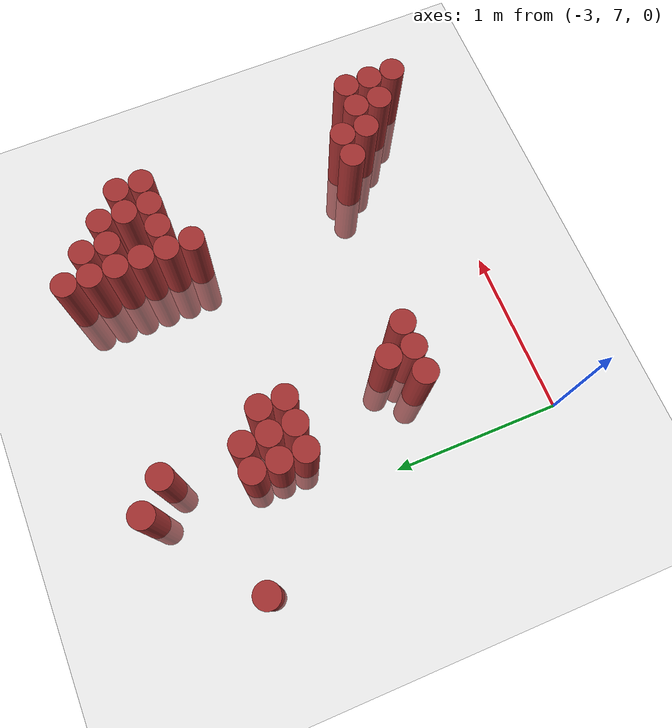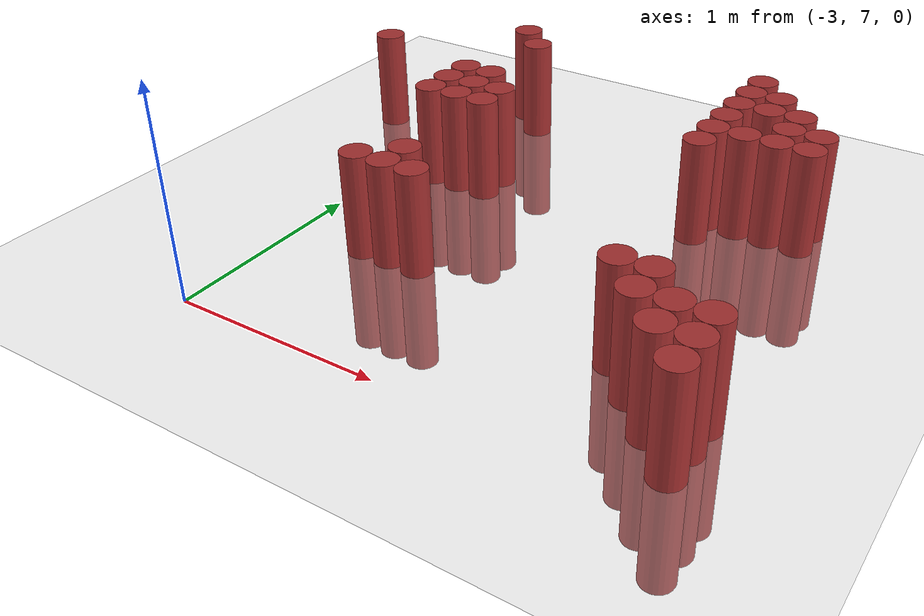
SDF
<sdf version="1.6">
 <world name="default">
  <model name="ground_plane">
   <static>1</static>
   <link name="link">
    <collision name="collision">
     <geometry><plane><normal>0 0 1</normal><size>100 100</size></plane></geometry>
     <surface><friction><ode><mu>100</mu><mu2>50</mu2></ode></friction></surface>
    </collision>
    <visual name="visual">
     <cast_shadows>0</cast_shadows>
     <geometry><plane><normal>0 0 1</normal><size>100 100</size></plane></geometry>
     <material>
      <script><uri>file://media/materials/scripts/gazebo.material</uri><name>Gazebo/Grey</name></script>
     </material>
    </visual>
   </link>
  </model>
  <model name="unit_cylinder_187">
   <static>1</static>
   <pose>-3.375000 8.925000 0.000000 0.000000 0.000000 0.000000</pose>
   <link name="link">
    <inertial>
     <mass>1</mass>
     <inertia><ixx>0.145833</ixx><ixy>0</ixy><ixz>0</ixz><iyy>0.145833</iyy><iyz>0</iyz><izz>0.125</izz></inertia>
    </inertial>
    <collision name="collision">
     <geometry><cylinder><radius>0.075000</radius><length>1</length></cylinder></geometry>
    </collision>
    <visual name="visual">
     <geometry><cylinder><radius>0.075000</radius><length>1</length></cylinder></geometry>
     <material>
      <ambient>0.648000 0.192000 0.192000 1</ambient>
      <diffuse>0.648000 0.192000 0.192000 1</diffuse>
     </material>
     <material>
      <script><name>Gazebo/Grey</name><uri>file://media/materials/scripts/gazebo.material</uri></script>
     </material>
    </visual>
    <sensor name="sensor_contact" type="contact"><contact><collision>collision</collision></contact></sensor>
   </link>
   <plugin filename="gz-sim-touchplugin-system" name="gz::sim::systems::TouchPlugin">
    <target>robot</target>
    <namespace>robot</namespace>
    <time>0.001</time>
    <enabled>true</enabled>
   </plugin>
  </model>
  <model name="unit_cylinder_197">
   <static>1</static>
   <pose>-2.775000 8.475000 0.000000 0.000000 0.000000 0.000000</pose>
   <link name="link">
    <inertial>
     <mass>1</mass>
     <inertia><ixx>0.145833</ixx><ixy>0</ixy><ixz>0</ixz><iyy>0.145833</iyy><iyz>0</iyz><izz>0.125</izz></inertia>
    </inertial>
    <collision name="collision">
     <geometry><cylinder><radius>0.075000</radius><length>1</length></cylinder></geometry>
    </collision>
    <visual name="visual">
     <geometry><cylinder><radius>0.075000</radius><length>1</length></cylinder></geometry>
     <material>
      <ambient>0.648000 0.192000 0.192000 1</ambient>
      <diffuse>0.648000 0.192000 0.192000 1</diffuse>
     </material>
     <material>
      <script><name>Gazebo/Grey</name><uri>file://media/materials/scripts/gazebo.material</uri></script>
     </material>
    </visual>
    <sensor name="sensor_contact" type="contact"><contact><collision>collision</collision></contact></sensor>
   </link>
   <plugin filename="gz-sim-touchplugin-system" name="gz::sim::systems::TouchPlugin">
    <target>robot</target>
    <namespace>robot</namespace>
    <time>0.001</time>
    <enabled>true</enabled>
   </plugin>
  </model>
  <model name="unit_cylinder_198">
   <static>1</static>
   <pose>-2.775000 8.625000 0.000000 0.000000 0.000000 0.000000</pose>
   <link name="link">
    <inertial>
     <mass>1</mass>
     <inertia><ixx>0.145833</ixx><ixy>0</ixy><ixz>0</ixz><iyy>0.145833</iyy><iyz>0</iyz><izz>0.125</izz></inertia>
    </inertial>
    <collision name="collision">
     <geometry><cylinder><radius>0.075000</radius><length>1</length></cylinder></geometry>
    </collision>
    <visual name="visual">
     <geometry><cylinder><radius>0.075000</radius><length>1</length></cylinder></geometry>
     <material>
      <ambient>0.648000 0.192000 0.192000 1</ambient>
      <diffuse>0.648000 0.192000 0.192000 1</diffuse>
     </material>
     <material>
      <script><name>Gazebo/Grey</name><uri>file://media/materials/scripts/gazebo.material</uri></script>
     </material>
    </visual>
    <sensor name="sensor_contact" type="contact"><contact><collision>collision</collision></contact></sensor>
   </link>
   <plugin filename="gz-sim-touchplugin-system" name="gz::sim::systems::TouchPlugin">
    <target>robot</target>
    <namespace>robot</namespace>
    <time>0.001</time>
    <enabled>true</enabled>
   </plugin>
  </model>
  <model name="unit_cylinder_199">
   <static>1</static>
   <pose>-2.775000 8.775000 0.000000 0.000000 0.000000 0.000000</pose>
   <link name="link">
    <inertial>
     <mass>1</mass>
     <inertia><ixx>0.145833</ixx><ixy>0</ixy><ixz>0</ixz><iyy>0.145833</iyy><iyz>0</iyz><izz>0.125</izz></inertia>
    </inertial>
    <collision name="collision">
     <geometry><cylinder><radius>0.075000</radius><length>1</length></cylinder></geometry>
    </collision>
    <visual name="visual">
     <geometry><cylinder><radius>0.075000</radius><length>1</length></cylinder></geometry>
     <material>
      <ambient>0.648000 0.192000 0.192000 1</ambient>
      <diffuse>0.648000 0.192000 0.192000 1</diffuse>
     </material>
     <material>
      <script><name>Gazebo/Grey</name><uri>file://media/materials/scripts/gazebo.material</uri></script>
     </material>
    </visual>
    <sensor name="sensor_contact" type="contact"><contact><collision>collision</collision></contact></sensor>
   </link>
   <plugin filename="gz-sim-touchplugin-system" name="gz::sim::systems::TouchPlugin">
    <target>robot</target>
    <namespace>robot</namespace>
    <time>0.001</time>
    <enabled>true</enabled>
   </plugin>
  </model>
  <model name="unit_cylinder_200">
   <static>1</static>
   <pose>-2.775000 9.375000 0.000000 0.000000 0.000000 0.000000</pose>
   <link name="link">
    <inertial>
     <mass>1</mass>
     <inertia><ixx>0.145833</ixx><ixy>0</ixy><ixz>0</ixz><iyy>0.145833</iyy><iyz>0</iyz><izz>0.125</izz></inertia>
    </inertial>
    <collision name="collision">
     <geometry><cylinder><radius>0.075000</radius><length>1</length></cylinder></geometry>
    </collision>
    <visual name="visual">
     <geometry><cylinder><radius>0.075000</radius><length>1</length></cylinder></geometry>
     <material>
      <ambient>0.648000 0.192000 0.192000 1</ambient>
      <diffuse>0.648000 0.192000 0.192000 1</diffuse>
     </material>
     <material>
      <script><name>Gazebo/Grey</name><uri>file://media/materials/scripts/gazebo.material</uri></script>
     </material>
    </visual>
    <sensor name="sensor_contact" type="contact"><contact><collision>collision</collision></contact></sensor>
   </link>
   <plugin filename="gz-sim-touchplugin-system" name="gz::sim::systems::TouchPlugin">
    <target>robot</target>
    <namespace>robot</namespace>
    <time>0.001</time>
    <enabled>true</enabled>
   </plugin>
  </model>
  <model name="unit_cylinder_201">
   <static>1</static>
   <pose>-2.625000 7.725000 0.000000 0.000000 0.000000 0.000000</pose>
   <link name="link">
    <inertial>
     <mass>1</mass>
     <inertia><ixx>0.145833</ixx><ixy>0</ixy><ixz>0</ixz><iyy>0.145833</iyy><iyz>0</iyz><izz>0.125</izz></inertia>
    </inertial>
    <collision name="collision">
     <geometry><cylinder><radius>0.075000</radius><length>1</length></cylinder></geometry>
    </collision>
    <visual name="visual">
     <geometry><cylinder><radius>0.075000</radius><length>1</length></cylinder></geometry>
     <material>
      <ambient>0.648000 0.192000 0.192000 1</ambient>
      <diffuse>0.648000 0.192000 0.192000 1</diffuse>
     </material>
     <material>
      <script><name>Gazebo/Grey</name><uri>file://media/materials/scripts/gazebo.material</uri></script>
     </material>
    </visual>
    <sensor name="sensor_contact" type="contact"><contact><collision>collision</collision></contact></sensor>
   </link>
   <plugin filename="gz-sim-touchplugin-system" name="gz::sim::systems::TouchPlugin">
    <target>robot</target>
    <namespace>robot</namespace>
    <time>0.001</time>
    <enabled>true</enabled>
   </plugin>
  </model>
  <model name="unit_cylinder_202">
   <static>1</static>
   <pose>-2.625000 8.475000 0.000000 0.000000 0.000000 0.000000</pose>
   <link name="link">
    <inertial>
     <mass>1</mass>
     <inertia><ixx>0.145833</ixx><ixy>0</ixy><ixz>0</ixz><iyy>0.145833</iyy><iyz>0</iyz><izz>0.125</izz></inertia>
    </inertial>
    <collision name="collision">
     <geometry><cylinder><radius>0.075000</radius><length>1</length></cylinder></geometry>
    </collision>
    <visual name="visual">
     <geometry><cylinder><radius>0.075000</radius><length>1</length></cylinder></geometry>
     <material>
      <ambient>0.648000 0.192000 0.192000 1</ambient>
      <diffuse>0.648000 0.192000 0.192000 1</diffuse>
     </material>
     <material>
      <script><name>Gazebo/Grey</name><uri>file://media/materials/scripts/gazebo.material</uri></script>
     </material>
    </visual>
    <sensor name="sensor_contact" type="contact"><contact><collision>collision</collision></contact></sensor>
   </link>
   <plugin filename="gz-sim-touchplugin-system" name="gz::sim::systems::TouchPlugin">
    <target>robot</target>
    <namespace>robot</namespace>
    <time>0.001</time>
    <enabled>true</enabled>
   </plugin>
  </model>
  <model name="unit_cylinder_203">
   <static>1</static>
   <pose>-2.625000 8.625000 0.000000 0.000000 0.000000 0.000000</pose>
   <link name="link">
    <inertial>
     <mass>1</mass>
     <inertia><ixx>0.145833</ixx><ixy>0</ixy><ixz>0</ixz><iyy>0.145833</iyy><iyz>0</iyz><izz>0.125</izz></inertia>
    </inertial>
    <collision name="collision">
     <geometry><cylinder><radius>0.075000</radius><length>1</length></cylinder></geometry>
    </collision>
    <visual name="visual">
     <geometry><cylinder><radius>0.075000</radius><length>1</length></cylinder></geometry>
     <material>
      <ambient>0.648000 0.192000 0.192000 1</ambient>
      <diffuse>0.648000 0.192000 0.192000 1</diffuse>
     </material>
     <material>
      <script><name>Gazebo/Grey</name><uri>file://media/materials/scripts/gazebo.material</uri></script>
     </material>
    </visual>
    <sensor name="sensor_contact" type="contact"><contact><collision>collision</collision></contact></sensor>
   </link>
   <plugin filename="gz-sim-touchplugin-system" name="gz::sim::systems::TouchPlugin">
    <target>robot</target>
    <namespace>robot</namespace>
    <time>0.001</time>
    <enabled>true</enabled>
   </plugin>
  </model>
  <model name="unit_cylinder_204">
   <static>1</static>
   <pose>-2.625000 8.775000 0.000000 0.000000 0.000000 0.000000</pose>
   <link name="link">
    <inertial>
     <mass>1</mass>
     <inertia><ixx>0.145833</ixx><ixy>0</ixy><ixz>0</ixz><iyy>0.145833</iyy><iyz>0</iyz><izz>0.125</izz></inertia>
    </inertial>
    <collision name="collision">
     <geometry><cylinder><radius>0.075000</radius><length>1</length></cylinder></geometry>
    </collision>
    <visual name="visual">
     <geometry><cylinder><radius>0.075000</radius><length>1</length></cylinder></geometry>
     <material>
      <ambient>0.648000 0.192000 0.192000 1</ambient>
      <diffuse>0.648000 0.192000 0.192000 1</diffuse>
     </material>
     <material>
      <script><name>Gazebo/Grey</name><uri>file://media/materials/scripts/gazebo.material</uri></script>
     </material>
    </visual>
    <sensor name="sensor_contact" type="contact"><contact><collision>collision</collision></contact></sensor>
   </link>
   <plugin filename="gz-sim-touchplugin-system" name="gz::sim::systems::TouchPlugin">
    <target>robot</target>
    <namespace>robot</namespace>
    <time>0.001</time>
    <enabled>true</enabled>
   </plugin>
  </model>
  <model name="unit_cylinder_205">
   <static>1</static>
   <pose>-2.625000 9.225000 0.000000 0.000000 0.000000 0.000000</pose>
   <link name="link">
    <inertial>
     <mass>1</mass>
     <inertia><ixx>0.145833</ixx><ixy>0</ixy><ixz>0</ixz><iyy>0.145833</iyy><iyz>0</iyz><izz>0.125</izz></inertia>
    </inertial>
    <collision name="collision">
     <geometry><cylinder><radius>0.075000</radius><length>1</length></cylinder></geometry>
    </collision>
    <visual name="visual">
     <geometry><cylinder><radius>0.075000</radius><length>1</length></cylinder></geometry>
     <material>
      <ambient>0.648000 0.192000 0.192000 1</ambient>
      <diffuse>0.648000 0.192000 0.192000 1</diffuse>
     </material>
     <material>
      <script><name>Gazebo/Grey</name><uri>file://media/materials/scripts/gazebo.material</uri></script>
     </material>
    </visual>
    <sensor name="sensor_contact" type="contact"><contact><collision>collision</collision></contact></sensor>
   </link>
   <plugin filename="gz-sim-touchplugin-system" name="gz::sim::systems::TouchPlugin">
    <target>robot</target>
    <namespace>robot</namespace>
    <time>0.001</time>
    <enabled>true</enabled>
   </plugin>
  </model>
  <model name="unit_cylinder_206">
   <static>1</static>
   <pose>-2.475000 7.725000 0.000000 0.000000 0.000000 0.000000</pose>
   <link name="link">
    <inertial>
     <mass>1</mass>
     <inertia><ixx>0.145833</ixx><ixy>0</ixy><ixz>0</ixz><iyy>0.145833</iyy><iyz>0</iyz><izz>0.125</izz></inertia>
    </inertial>
    <collision name="collision">
     <geometry><cylinder><radius>0.075000</radius><length>1</length></cylinder></geometry>
    </collision>
    <visual name="visual">
     <geometry><cylinder><radius>0.075000</radius><length>1</length></cylinder></geometry>
     <material>
      <ambient>0.648000 0.192000 0.192000 1</ambient>
      <diffuse>0.648000 0.192000 0.192000 1</diffuse>
     </material>
     <material>
      <script><name>Gazebo/Grey</name><uri>file://media/materials/scripts/gazebo.material</uri></script>
     </material>
    </visual>
    <sensor name="sensor_contact" type="contact"><contact><collision>collision</collision></contact></sensor>
   </link>
   <plugin filename="gz-sim-touchplugin-system" name="gz::sim::systems::TouchPlugin">
    <target>robot</target>
    <namespace>robot</namespace>
    <time>0.001</time>
    <enabled>true</enabled>
   </plugin>
  </model>
  <model name="unit_cylinder_207">
   <static>1</static>
   <pose>-2.475000 7.875000 0.000000 0.000000 0.000000 0.000000</pose>
   <link name="link">
    <inertial>
     <mass>1</mass>
     <inertia><ixx>0.145833</ixx><ixy>0</ixy><ixz>0</ixz><iyy>0.145833</iyy><iyz>0</iyz><izz>0.125</izz></inertia>
    </inertial>
    <collision name="collision">
     <geometry><cylinder><radius>0.075000</radius><length>1</length></cylinder></geometry>
    </collision>
    <visual name="visual">
     <geometry><cylinder><radius>0.075000</radius><length>1</length></cylinder></geometry>
     <material>
      <ambient>0.648000 0.192000 0.192000 1</ambient>
      <diffuse>0.648000 0.192000 0.192000 1</diffuse>
     </material>
     <material>
      <script><name>Gazebo/Grey</name><uri>file://media/materials/scripts/gazebo.material</uri></script>
     </material>
    </visual>
    <sensor name="sensor_contact" type="contact"><contact><collision>collision</collision></contact></sensor>
   </link>
   <plugin filename="gz-sim-touchplugin-system" name="gz::sim::systems::TouchPlugin">
    <target>robot</target>
    <namespace>robot</namespace>
    <time>0.001</time>
    <enabled>true</enabled>
   </plugin>
  </model>
  <model name="unit_cylinder_208">
   <static>1</static>
   <pose>-2.475000 8.475000 0.000000 0.000000 0.000000 0.000000</pose>
   <link name="link">
    <inertial>
     <mass>1</mass>
     <inertia><ixx>0.145833</ixx><ixy>0</ixy><ixz>0</ixz><iyy>0.145833</iyy><iyz>0</iyz><izz>0.125</izz></inertia>
    </inertial>
    <collision name="collision">
     <geometry><cylinder><radius>0.075000</radius><length>1</length></cylinder></geometry>
    </collision>
    <visual name="visual">
     <geometry><cylinder><radius>0.075000</radius><length>1</length></cylinder></geometry>
     <material>
      <ambient>0.648000 0.192000 0.192000 1</ambient>
      <diffuse>0.648000 0.192000 0.192000 1</diffuse>
     </material>
     <material>
      <script><name>Gazebo/Grey</name><uri>file://media/materials/scripts/gazebo.material</uri></script>
     </material>
    </visual>
    <sensor name="sensor_contact" type="contact"><contact><collision>collision</collision></contact></sensor>
   </link>
   <plugin filename="gz-sim-touchplugin-system" name="gz::sim::systems::TouchPlugin">
    <target>robot</target>
    <namespace>robot</namespace>
    <time>0.001</time>
    <enabled>true</enabled>
   </plugin>
  </model>
  <model name="unit_cylinder_209">
   <static>1</static>
   <pose>-2.475000 8.625000 0.000000 0.000000 0.000000 0.000000</pose>
   <link name="link">
    <inertial>
     <mass>1</mass>
     <inertia><ixx>0.145833</ixx><ixy>0</ixy><ixz>0</ixz><iyy>0.145833</iyy><iyz>0</iyz><izz>0.125</izz></inertia>
    </inertial>
    <collision name="collision">
     <geometry><cylinder><radius>0.075000</radius><length>1</length></cylinder></geometry>
    </collision>
    <visual name="visual">
     <geometry><cylinder><radius>0.075000</radius><length>1</length></cylinder></geometry>
     <material>
      <ambient>0.648000 0.192000 0.192000 1</ambient>
      <diffuse>0.648000 0.192000 0.192000 1</diffuse>
     </material>
     <material>
      <script><name>Gazebo/Grey</name><uri>file://media/materials/scripts/gazebo.material</uri></script>
     </material>
    </visual>
    <sensor name="sensor_contact" type="contact"><contact><collision>collision</collision></contact></sensor>
   </link>
   <plugin filename="gz-sim-touchplugin-system" name="gz::sim::systems::TouchPlugin">
    <target>robot</target>
    <namespace>robot</namespace>
    <time>0.001</time>
    <enabled>true</enabled>
   </plugin>
  </model>
  <model name="unit_cylinder_210">
   <static>1</static>
   <pose>-2.325000 7.725000 0.000000 0.000000 0.000000 0.000000</pose>
   <link name="link">
    <inertial>
     <mass>1</mass>
     <inertia><ixx>0.145833</ixx><ixy>0</ixy><ixz>0</ixz><iyy>0.145833</iyy><iyz>0</iyz><izz>0.125</izz></inertia>
    </inertial>
    <collision name="collision">
     <geometry><cylinder><radius>0.075000</radius><length>1</length></cylinder></geometry>
    </collision>
    <visual name="visual">
     <geometry><cylinder><radius>0.075000</radius><length>1</length></cylinder></geometry>
     <material>
      <ambient>0.648000 0.192000 0.192000 1</ambient>
      <diffuse>0.648000 0.192000 0.192000 1</diffuse>
     </material>
     <material>
      <script><name>Gazebo/Grey</name><uri>file://media/materials/scripts/gazebo.material</uri></script>
     </material>
    </visual>
    <sensor name="sensor_contact" type="contact"><contact><collision>collision</collision></contact></sensor>
   </link>
   <plugin filename="gz-sim-touchplugin-system" name="gz::sim::systems::TouchPlugin">
    <target>robot</target>
    <namespace>robot</namespace>
    <time>0.001</time>
    <enabled>true</enabled>
   </plugin>
  </model>
  <model name="unit_cylinder_224">
   <static>1</static>
   <pose>-1.425000 8.625000 0.000000 0.000000 0.000000 0.000000</pose>
   <link name="link">
    <inertial>
     <mass>1</mass>
     <inertia><ixx>0.145833</ixx><ixy>0</ixy><ixz>0</ixz><iyy>0.145833</iyy><iyz>0</iyz><izz>0.125</izz></inertia>
    </inertial>
    <collision name="collision">
     <geometry><cylinder><radius>0.075000</radius><length>1</length></cylinder></geometry>
    </collision>
    <visual name="visual">
     <geometry><cylinder><radius>0.075000</radius><length>1</length></cylinder></geometry>
     <material>
      <ambient>0.648000 0.192000 0.192000 1</ambient>
      <diffuse>0.648000 0.192000 0.192000 1</diffuse>
     </material>
     <material>
      <script><name>Gazebo/Grey</name><uri>file://media/materials/scripts/gazebo.material</uri></script>
     </material>
    </visual>
    <sensor name="sensor_contact" type="contact"><contact><collision>collision</collision></contact></sensor>
   </link>
   <plugin filename="gz-sim-touchplugin-system" name="gz::sim::systems::TouchPlugin">
    <target>robot</target>
    <namespace>robot</namespace>
    <time>0.001</time>
    <enabled>true</enabled>
   </plugin>
  </model>
  <model name="unit_cylinder_225">
   <static>1</static>
   <pose>-1.425000 8.775000 0.000000 0.000000 0.000000 0.000000</pose>
   <link name="link">
    <inertial>
     <mass>1</mass>
     <inertia><ixx>0.145833</ixx><ixy>0</ixy><ixz>0</ixz><iyy>0.145833</iyy><iyz>0</iyz><izz>0.125</izz></inertia>
    </inertial>
    <collision name="collision">
     <geometry><cylinder><radius>0.075000</radius><length>1</length></cylinder></geometry>
    </collision>
    <visual name="visual">
     <geometry><cylinder><radius>0.075000</radius><length>1</length></cylinder></geometry>
     <material>
      <ambient>0.648000 0.192000 0.192000 1</ambient>
      <diffuse>0.648000 0.192000 0.192000 1</diffuse>
     </material>
     <material>
      <script><name>Gazebo/Grey</name><uri>file://media/materials/scripts/gazebo.material</uri></script>
     </material>
    </visual>
    <sensor name="sensor_contact" type="contact"><contact><collision>collision</collision></contact></sensor>
   </link>
   <plugin filename="gz-sim-touchplugin-system" name="gz::sim::systems::TouchPlugin">
    <target>robot</target>
    <namespace>robot</namespace>
    <time>0.001</time>
    <enabled>true</enabled>
   </plugin>
  </model>
  <model name="unit_cylinder_226">
   <static>1</static>
   <pose>-1.425000 8.925000 0.000000 0.000000 0.000000 0.000000</pose>
   <link name="link">
    <inertial>
     <mass>1</mass>
     <inertia><ixx>0.145833</ixx><ixy>0</ixy><ixz>0</ixz><iyy>0.145833</iyy><iyz>0</iyz><izz>0.125</izz></inertia>
    </inertial>
    <collision name="collision">
     <geometry><cylinder><radius>0.075000</radius><length>1</length></cylinder></geometry>
    </collision>
    <visual name="visual">
     <geometry><cylinder><radius>0.075000</radius><length>1</length></cylinder></geometry>
     <material>
      <ambient>0.648000 0.192000 0.192000 1</ambient>
      <diffuse>0.648000 0.192000 0.192000 1</diffuse>
     </material>
     <material>
      <script><name>Gazebo/Grey</name><uri>file://media/materials/scripts/gazebo.material</uri></script>
     </material>
    </visual>
    <sensor name="sensor_contact" type="contact"><contact><collision>collision</collision></contact></sensor>
   </link>
   <plugin filename="gz-sim-touchplugin-system" name="gz::sim::systems::TouchPlugin">
    <target>robot</target>
    <namespace>robot</namespace>
    <time>0.001</time>
    <enabled>true</enabled>
   </plugin>
  </model>
  <model name="unit_cylinder_227">
   <static>1</static>
   <pose>-1.425000 9.075000 0.000000 0.000000 0.000000 0.000000</pose>
   <link name="link">
    <inertial>
     <mass>1</mass>
     <inertia><ixx>0.145833</ixx><ixy>0</ixy><ixz>0</ixz><iyy>0.145833</iyy><iyz>0</iyz><izz>0.125</izz></inertia>
    </inertial>
    <collision name="collision">
     <geometry><cylinder><radius>0.075000</radius><length>1</length></cylinder></geometry>
    </collision>
    <visual name="visual">
     <geometry><cylinder><radius>0.075000</radius><length>1</length></cylinder></geometry>
     <material>
      <ambient>0.648000 0.192000 0.192000 1</ambient>
      <diffuse>0.648000 0.192000 0.192000 1</diffuse>
     </material>
     <material>
      <script><name>Gazebo/Grey</name><uri>file://media/materials/scripts/gazebo.material</uri></script>
     </material>
    </visual>
    <sensor name="sensor_contact" type="contact"><contact><collision>collision</collision></contact></sensor>
   </link>
   <plugin filename="gz-sim-touchplugin-system" name="gz::sim::systems::TouchPlugin">
    <target>robot</target>
    <namespace>robot</namespace>
    <time>0.001</time>
    <enabled>true</enabled>
   </plugin>
  </model>
  <model name="unit_cylinder_228">
   <static>1</static>
   <pose>-1.425000 9.225000 0.000000 0.000000 0.000000 0.000000</pose>
   <link name="link">
    <inertial>
     <mass>1</mass>
     <inertia><ixx>0.145833</ixx><ixy>0</ixy><ixz>0</ixz><iyy>0.145833</iyy><iyz>0</iyz><izz>0.125</izz></inertia>
    </inertial>
    <collision name="collision">
     <geometry><cylinder><radius>0.075000</radius><length>1</length></cylinder></geometry>
    </collision>
    <visual name="visual">
     <geometry><cylinder><radius>0.075000</radius><length>1</length></cylinder></geometry>
     <material>
      <ambient>0.648000 0.192000 0.192000 1</ambient>
      <diffuse>0.648000 0.192000 0.192000 1</diffuse>
     </material>
     <material>
      <script><name>Gazebo/Grey</name><uri>file://media/materials/scripts/gazebo.material</uri></script>
     </material>
    </visual>
    <sensor name="sensor_contact" type="contact"><contact><collision>collision</collision></contact></sensor>
   </link>
   <plugin filename="gz-sim-touchplugin-system" name="gz::sim::systems::TouchPlugin">
    <target>robot</target>
    <namespace>robot</namespace>
    <time>0.001</time>
    <enabled>true</enabled>
   </plugin>
  </model>
  <model name="unit_cylinder_229">
   <static>1</static>
   <pose>-1.425000 9.375000 0.000000 0.000000 0.000000 0.000000</pose>
   <link name="link">
    <inertial>
     <mass>1</mass>
     <inertia><ixx>0.145833</ixx><ixy>0</ixy><ixz>0</ixz><iyy>0.145833</iyy><iyz>0</iyz><izz>0.125</izz></inertia>
    </inertial>
    <collision name="collision">
     <geometry><cylinder><radius>0.075000</radius><length>1</length></cylinder></geometry>
    </collision>
    <visual name="visual">
     <geometry><cylinder><radius>0.075000</radius><length>1</length></cylinder></geometry>
     <material>
      <ambient>0.648000 0.192000 0.192000 1</ambient>
      <diffuse>0.648000 0.192000 0.192000 1</diffuse>
     </material>
     <material>
      <script><name>Gazebo/Grey</name><uri>file://media/materials/scripts/gazebo.material</uri></script>
     </material>
    </visual>
    <sensor name="sensor_contact" type="contact"><contact><collision>collision</collision></contact></sensor>
   </link>
   <plugin filename="gz-sim-touchplugin-system" name="gz::sim::systems::TouchPlugin">
    <target>robot</target>
    <namespace>robot</namespace>
    <time>0.001</time>
    <enabled>true</enabled>
   </plugin>
  </model>
  <model name="unit_cylinder_233">
   <static>1</static>
   <pose>-1.275000 7.575000 0.000000 0.000000 0.000000 0.000000</pose>
   <link name="link">
    <inertial>
     <mass>1</mass>
     <inertia><ixx>0.145833</ixx><ixy>0</ixy><ixz>0</ixz><iyy>0.145833</iyy><iyz>0</iyz><izz>0.125</izz></inertia>
    </inertial>
    <collision name="collision">
     <geometry><cylinder><radius>0.075000</radius><length>1</length></cylinder></geometry>
    </collision>
    <visual name="visual">
     <geometry><cylinder><radius>0.075000</radius><length>1</length></cylinder></geometry>
     <material>
      <ambient>0.648000 0.192000 0.192000 1</ambient>
      <diffuse>0.648000 0.192000 0.192000 1</diffuse>
     </material>
     <material>
      <script><name>Gazebo/Grey</name><uri>file://media/materials/scripts/gazebo.material</uri></script>
     </material>
    </visual>
    <sensor name="sensor_contact" type="contact"><contact><collision>collision</collision></contact></sensor>
   </link>
   <plugin filename="gz-sim-touchplugin-system" name="gz::sim::systems::TouchPlugin">
    <target>robot</target>
    <namespace>robot</namespace>
    <time>0.001</time>
    <enabled>true</enabled>
   </plugin>
  </model>
  <model name="unit_cylinder_234">
   <static>1</static>
   <pose>-1.275000 8.775000 0.000000 0.000000 0.000000 0.000000</pose>
   <link name="link">
    <inertial>
     <mass>1</mass>
     <inertia><ixx>0.145833</ixx><ixy>0</ixy><ixz>0</ixz><iyy>0.145833</iyy><iyz>0</iyz><izz>0.125</izz></inertia>
    </inertial>
    <collision name="collision">
     <geometry><cylinder><radius>0.075000</radius><length>1</length></cylinder></geometry>
    </collision>
    <visual name="visual">
     <geometry><cylinder><radius>0.075000</radius><length>1</length></cylinder></geometry>
     <material>
      <ambient>0.648000 0.192000 0.192000 1</ambient>
      <diffuse>0.648000 0.192000 0.192000 1</diffuse>
     </material>
     <material>
      <script><name>Gazebo/Grey</name><uri>file://media/materials/scripts/gazebo.material</uri></script>
     </material>
    </visual>
    <sensor name="sensor_contact" type="contact"><contact><collision>collision</collision></contact></sensor>
   </link>
   <plugin filename="gz-sim-touchplugin-system" name="gz::sim::systems::TouchPlugin">
    <target>robot</target>
    <namespace>robot</namespace>
    <time>0.001</time>
    <enabled>true</enabled>
   </plugin>
  </model>
  <model name="unit_cylinder_235">
   <static>1</static>
   <pose>-1.275000 9.075000 0.000000 0.000000 0.000000 0.000000</pose>
   <link name="link">
    <inertial>
     <mass>1</mass>
     <inertia><ixx>0.145833</ixx><ixy>0</ixy><ixz>0</ixz><iyy>0.145833</iyy><iyz>0</iyz><izz>0.125</izz></inertia>
    </inertial>
    <collision name="collision">
     <geometry><cylinder><radius>0.075000</radius><length>1</length></cylinder></geometry>
    </collision>
    <visual name="visual">
     <geometry><cylinder><radius>0.075000</radius><length>1</length></cylinder></geometry>
     <material>
      <ambient>0.648000 0.192000 0.192000 1</ambient>
      <diffuse>0.648000 0.192000 0.192000 1</diffuse>
     </material>
     <material>
      <script><name>Gazebo/Grey</name><uri>file://media/materials/scripts/gazebo.material</uri></script>
     </material>
    </visual>
    <sensor name="sensor_contact" type="contact"><contact><collision>collision</collision></contact></sensor>
   </link>
   <plugin filename="gz-sim-touchplugin-system" name="gz::sim::systems::TouchPlugin">
    <target>robot</target>
    <namespace>robot</namespace>
    <time>0.001</time>
    <enabled>true</enabled>
   </plugin>
  </model>
  <model name="unit_cylinder_236">
   <static>1</static>
   <pose>-1.275000 9.225000 0.000000 0.000000 0.000000 0.000000</pose>
   <link name="link">
    <inertial>
     <mass>1</mass>
     <inertia><ixx>0.145833</ixx><ixy>0</ixy><ixz>0</ixz><iyy>0.145833</iyy><iyz>0</iyz><izz>0.125</izz></inertia>
    </inertial>
    <collision name="collision">
     <geometry><cylinder><radius>0.075000</radius><length>1</length></cylinder></geometry>
    </collision>
    <visual name="visual">
     <geometry><cylinder><radius>0.075000</radius><length>1</length></cylinder></geometry>
     <material>
      <ambient>0.648000 0.192000 0.192000 1</ambient>
      <diffuse>0.648000 0.192000 0.192000 1</diffuse>
     </material>
     <material>
      <script><name>Gazebo/Grey</name><uri>file://media/materials/scripts/gazebo.material</uri></script>
     </material>
    </visual>
    <sensor name="sensor_contact" type="contact"><contact><collision>collision</collision></contact></sensor>
   </link>
   <plugin filename="gz-sim-touchplugin-system" name="gz::sim::systems::TouchPlugin">
    <target>robot</target>
    <namespace>robot</namespace>
    <time>0.001</time>
    <enabled>true</enabled>
   </plugin>
  </model>
  <model name="unit_cylinder_241">
   <static>1</static>
   <pose>-1.125000 7.425000 0.000000 0.000000 0.000000 0.000000</pose>
   <link name="link">
    <inertial>
     <mass>1</mass>
     <inertia><ixx>0.145833</ixx><ixy>0</ixy><ixz>0</ixz><iyy>0.145833</iyy><iyz>0</iyz><izz>0.125</izz></inertia>
    </inertial>
    <collision name="collision">
     <geometry><cylinder><radius>0.075000</radius><length>1</length></cylinder></geometry>
    </collision>
    <visual name="visual">
     <geometry><cylinder><radius>0.075000</radius><length>1</length></cylinder></geometry>
     <material>
      <ambient>0.648000 0.192000 0.192000 1</ambient>
      <diffuse>0.648000 0.192000 0.192000 1</diffuse>
     </material>
     <material>
      <script><name>Gazebo/Grey</name><uri>file://media/materials/scripts/gazebo.material</uri></script>
     </material>
    </visual>
    <sensor name="sensor_contact" type="contact"><contact><collision>collision</collision></contact></sensor>
   </link>
   <plugin filename="gz-sim-touchplugin-system" name="gz::sim::systems::TouchPlugin">
    <target>robot</target>
    <namespace>robot</namespace>
    <time>0.001</time>
    <enabled>true</enabled>
   </plugin>
  </model>
  <model name="unit_cylinder_242">
   <static>1</static>
   <pose>-1.125000 7.575000 0.000000 0.000000 0.000000 0.000000</pose>
   <link name="link">
    <inertial>
     <mass>1</mass>
     <inertia><ixx>0.145833</ixx><ixy>0</ixy><ixz>0</ixz><iyy>0.145833</iyy><iyz>0</iyz><izz>0.125</izz></inertia>
    </inertial>
    <collision name="collision">
     <geometry><cylinder><radius>0.075000</radius><length>1</length></cylinder></geometry>
    </collision>
    <visual name="visual">
     <geometry><cylinder><radius>0.075000</radius><length>1</length></cylinder></geometry>
     <material>
      <ambient>0.648000 0.192000 0.192000 1</ambient>
      <diffuse>0.648000 0.192000 0.192000 1</diffuse>
     </material>
     <material>
      <script><name>Gazebo/Grey</name><uri>file://media/materials/scripts/gazebo.material</uri></script>
     </material>
    </visual>
    <sensor name="sensor_contact" type="contact"><contact><collision>collision</collision></contact></sensor>
   </link>
   <plugin filename="gz-sim-touchplugin-system" name="gz::sim::systems::TouchPlugin">
    <target>robot</target>
    <namespace>robot</namespace>
    <time>0.001</time>
    <enabled>true</enabled>
   </plugin>
  </model>
  <model name="unit_cylinder_243">
   <static>1</static>
   <pose>-1.125000 8.775000 0.000000 0.000000 0.000000 0.000000</pose>
   <link name="link">
    <inertial>
     <mass>1</mass>
     <inertia><ixx>0.145833</ixx><ixy>0</ixy><ixz>0</ixz><iyy>0.145833</iyy><iyz>0</iyz><izz>0.125</izz></inertia>
    </inertial>
    <collision name="collision">
     <geometry><cylinder><radius>0.075000</radius><length>1</length></cylinder></geometry>
    </collision>
    <visual name="visual">
     <geometry><cylinder><radius>0.075000</radius><length>1</length></cylinder></geometry>
     <material>
      <ambient>0.648000 0.192000 0.192000 1</ambient>
      <diffuse>0.648000 0.192000 0.192000 1</diffuse>
     </material>
     <material>
      <script><name>Gazebo/Grey</name><uri>file://media/materials/scripts/gazebo.material</uri></script>
     </material>
    </visual>
    <sensor name="sensor_contact" type="contact"><contact><collision>collision</collision></contact></sensor>
   </link>
   <plugin filename="gz-sim-touchplugin-system" name="gz::sim::systems::TouchPlugin">
    <target>robot</target>
    <namespace>robot</namespace>
    <time>0.001</time>
    <enabled>true</enabled>
   </plugin>
  </model>
  <model name="unit_cylinder_244">
   <static>1</static>
   <pose>-1.125000 8.925000 0.000000 0.000000 0.000000 0.000000</pose>
   <link name="link">
    <inertial>
     <mass>1</mass>
     <inertia><ixx>0.145833</ixx><ixy>0</ixy><ixz>0</ixz><iyy>0.145833</iyy><iyz>0</iyz><izz>0.125</izz></inertia>
    </inertial>
    <collision name="collision">
     <geometry><cylinder><radius>0.075000</radius><length>1</length></cylinder></geometry>
    </collision>
    <visual name="visual">
     <geometry><cylinder><radius>0.075000</radius><length>1</length></cylinder></geometry>
     <material>
      <ambient>0.648000 0.192000 0.192000 1</ambient>
      <diffuse>0.648000 0.192000 0.192000 1</diffuse>
     </material>
     <material>
      <script><name>Gazebo/Grey</name><uri>file://media/materials/scripts/gazebo.material</uri></script>
     </material>
    </visual>
    <sensor name="sensor_contact" type="contact"><contact><collision>collision</collision></contact></sensor>
   </link>
   <plugin filename="gz-sim-touchplugin-system" name="gz::sim::systems::TouchPlugin">
    <target>robot</target>
    <namespace>robot</namespace>
    <time>0.001</time>
    <enabled>true</enabled>
   </plugin>
  </model>
  <model name="unit_cylinder_245">
   <static>1</static>
   <pose>-1.125000 9.075000 0.000000 0.000000 0.000000 0.000000</pose>
   <link name="link">
    <inertial>
     <mass>1</mass>
     <inertia><ixx>0.145833</ixx><ixy>0</ixy><ixz>0</ixz><iyy>0.145833</iyy><iyz>0</iyz><izz>0.125</izz></inertia>
    </inertial>
    <collision name="collision">
     <geometry><cylinder><radius>0.075000</radius><length>1</length></cylinder></geometry>
    </collision>
    <visual name="visual">
     <geometry><cylinder><radius>0.075000</radius><length>1</length></cylinder></geometry>
     <material>
      <ambient>0.648000 0.192000 0.192000 1</ambient>
      <diffuse>0.648000 0.192000 0.192000 1</diffuse>
     </material>
     <material>
      <script><name>Gazebo/Grey</name><uri>file://media/materials/scripts/gazebo.material</uri></script>
     </material>
    </visual>
    <sensor name="sensor_contact" type="contact"><contact><collision>collision</collision></contact></sensor>
   </link>
   <plugin filename="gz-sim-touchplugin-system" name="gz::sim::systems::TouchPlugin">
    <target>robot</target>
    <namespace>robot</namespace>
    <time>0.001</time>
    <enabled>true</enabled>
   </plugin>
  </model>
  <model name="unit_cylinder_251">
   <static>1</static>
   <pose>-0.975000 7.275000 0.000000 0.000000 0.000000 0.000000</pose>
   <link name="link">
    <inertial>
     <mass>1</mass>
     <inertia><ixx>0.145833</ixx><ixy>0</ixy><ixz>0</ixz><iyy>0.145833</iyy><iyz>0</iyz><izz>0.125</izz></inertia>
    </inertial>
    <collision name="collision">
     <geometry><cylinder><radius>0.075000</radius><length>1</length></cylinder></geometry>
    </collision>
    <visual name="visual">
     <geometry><cylinder><radius>0.075000</radius><length>1</length></cylinder></geometry>
     <material>
      <ambient>0.648000 0.192000 0.192000 1</ambient>
      <diffuse>0.648000 0.192000 0.192000 1</diffuse>
     </material>
     <material>
      <script><name>Gazebo/Grey</name><uri>file://media/materials/scripts/gazebo.material</uri></script>
     </material>
    </visual>
    <sensor name="sensor_contact" type="contact"><contact><collision>collision</collision></contact></sensor>
   </link>
   <plugin filename="gz-sim-touchplugin-system" name="gz::sim::systems::TouchPlugin">
    <target>robot</target>
    <namespace>robot</namespace>
    <time>0.001</time>
    <enabled>true</enabled>
   </plugin>
  </model>
  <model name="unit_cylinder_252">
   <static>1</static>
   <pose>-0.975000 7.425000 0.000000 0.000000 0.000000 0.000000</pose>
   <link name="link">
    <inertial>
     <mass>1</mass>
     <inertia><ixx>0.145833</ixx><ixy>0</ixy><ixz>0</ixz><iyy>0.145833</iyy><iyz>0</iyz><izz>0.125</izz></inertia>
    </inertial>
    <collision name="collision">
     <geometry><cylinder><radius>0.075000</radius><length>1</length></cylinder></geometry>
    </collision>
    <visual name="visual">
     <geometry><cylinder><radius>0.075000</radius><length>1</length></cylinder></geometry>
     <material>
      <ambient>0.648000 0.192000 0.192000 1</ambient>
      <diffuse>0.648000 0.192000 0.192000 1</diffuse>
     </material>
     <material>
      <script><name>Gazebo/Grey</name><uri>file://media/materials/scripts/gazebo.material</uri></script>
     </material>
    </visual>
    <sensor name="sensor_contact" type="contact"><contact><collision>collision</collision></contact></sensor>
   </link>
   <plugin filename="gz-sim-touchplugin-system" name="gz::sim::systems::TouchPlugin">
    <target>robot</target>
    <namespace>robot</namespace>
    <time>0.001</time>
    <enabled>true</enabled>
   </plugin>
  </model>
  <model name="unit_cylinder_253">
   <static>1</static>
   <pose>-0.975000 8.775000 0.000000 0.000000 0.000000 0.000000</pose>
   <link name="link">
    <inertial>
     <mass>1</mass>
     <inertia><ixx>0.145833</ixx><ixy>0</ixy><ixz>0</ixz><iyy>0.145833</iyy><iyz>0</iyz><izz>0.125</izz></inertia>
    </inertial>
    <collision name="collision">
     <geometry><cylinder><radius>0.075000</radius><length>1</length></cylinder></geometry>
    </collision>
    <visual name="visual">
     <geometry><cylinder><radius>0.075000</radius><length>1</length></cylinder></geometry>
     <material>
      <ambient>0.648000 0.192000 0.192000 1</ambient>
      <diffuse>0.648000 0.192000 0.192000 1</diffuse>
     </material>
     <material>
      <script><name>Gazebo/Grey</name><uri>file://media/materials/scripts/gazebo.material</uri></script>
     </material>
    </visual>
    <sensor name="sensor_contact" type="contact"><contact><collision>collision</collision></contact></sensor>
   </link>
   <plugin filename="gz-sim-touchplugin-system" name="gz::sim::systems::TouchPlugin">
    <target>robot</target>
    <namespace>robot</namespace>
    <time>0.001</time>
    <enabled>true</enabled>
   </plugin>
  </model>
  <model name="unit_cylinder_254">
   <static>1</static>
   <pose>-0.975000 8.925000 0.000000 0.000000 0.000000 0.000000</pose>
   <link name="link">
    <inertial>
     <mass>1</mass>
     <inertia><ixx>0.145833</ixx><ixy>0</ixy><ixz>0</ixz><iyy>0.145833</iyy><iyz>0</iyz><izz>0.125</izz></inertia>
    </inertial>
    <collision name="collision">
     <geometry><cylinder><radius>0.075000</radius><length>1</length></cylinder></geometry>
    </collision>
    <visual name="visual">
     <geometry><cylinder><radius>0.075000</radius><length>1</length></cylinder></geometry>
     <material>
      <ambient>0.648000 0.192000 0.192000 1</ambient>
      <diffuse>0.648000 0.192000 0.192000 1</diffuse>
     </material>
     <material>
      <script><name>Gazebo/Grey</name><uri>file://media/materials/scripts/gazebo.material</uri></script>
     </material>
    </visual>
    <sensor name="sensor_contact" type="contact"><contact><collision>collision</collision></contact></sensor>
   </link>
   <plugin filename="gz-sim-touchplugin-system" name="gz::sim::systems::TouchPlugin">
    <target>robot</target>
    <namespace>robot</namespace>
    <time>0.001</time>
    <enabled>true</enabled>
   </plugin>
  </model>
  <model name="unit_cylinder_259">
   <static>1</static>
   <pose>-0.825000 7.125000 0.000000 0.000000 0.000000 0.000000</pose>
   <link name="link">
    <inertial>
     <mass>1</mass>
     <inertia><ixx>0.145833</ixx><ixy>0</ixy><ixz>0</ixz><iyy>0.145833</iyy><iyz>0</iyz><izz>0.125</izz></inertia>
    </inertial>
    <collision name="collision">
     <geometry><cylinder><radius>0.075000</radius><length>1</length></cylinder></geometry>
    </collision>
    <visual name="visual">
     <geometry><cylinder><radius>0.075000</radius><length>1</length></cylinder></geometry>
     <material>
      <ambient>0.648000 0.192000 0.192000 1</ambient>
      <diffuse>0.648000 0.192000 0.192000 1</diffuse>
     </material>
     <material>
      <script><name>Gazebo/Grey</name><uri>file://media/materials/scripts/gazebo.material</uri></script>
     </material>
    </visual>
    <sensor name="sensor_contact" type="contact"><contact><collision>collision</collision></contact></sensor>
   </link>
   <plugin filename="gz-sim-touchplugin-system" name="gz::sim::systems::TouchPlugin">
    <target>robot</target>
    <namespace>robot</namespace>
    <time>0.001</time>
    <enabled>true</enabled>
   </plugin>
  </model>
  <model name="unit_cylinder_260">
   <static>1</static>
   <pose>-0.825000 7.275000 0.000000 0.000000 0.000000 0.000000</pose>
   <link name="link">
    <inertial>
     <mass>1</mass>
     <inertia><ixx>0.145833</ixx><ixy>0</ixy><ixz>0</ixz><iyy>0.145833</iyy><iyz>0</iyz><izz>0.125</izz></inertia>
    </inertial>
    <collision name="collision">
     <geometry><cylinder><radius>0.075000</radius><length>1</length></cylinder></geometry>
    </collision>
    <visual name="visual">
     <geometry><cylinder><radius>0.075000</radius><length>1</length></cylinder></geometry>
     <material>
      <ambient>0.648000 0.192000 0.192000 1</ambient>
      <diffuse>0.648000 0.192000 0.192000 1</diffuse>
     </material>
     <material>
      <script><name>Gazebo/Grey</name><uri>file://media/materials/scripts/gazebo.material</uri></script>
     </material>
    </visual>
    <sensor name="sensor_contact" type="contact"><contact><collision>collision</collision></contact></sensor>
   </link>
   <plugin filename="gz-sim-touchplugin-system" name="gz::sim::systems::TouchPlugin">
    <target>robot</target>
    <namespace>robot</namespace>
    <time>0.001</time>
    <enabled>true</enabled>
   </plugin>
  </model>
  <model name="unit_cylinder_261">
   <static>1</static>
   <pose>-0.825000 7.425000 0.000000 0.000000 0.000000 0.000000</pose>
   <link name="link">
    <inertial>
     <mass>1</mass>
     <inertia><ixx>0.145833</ixx><ixy>0</ixy><ixz>0</ixz><iyy>0.145833</iyy><iyz>0</iyz><izz>0.125</izz></inertia>
    </inertial>
    <collision name="collision">
     <geometry><cylinder><radius>0.075000</radius><length>1</length></cylinder></geometry>
    </collision>
    <visual name="visual">
     <geometry><cylinder><radius>0.075000</radius><length>1</length></cylinder></geometry>
     <material>
      <ambient>0.648000 0.192000 0.192000 1</ambient>
      <diffuse>0.648000 0.192000 0.192000 1</diffuse>
     </material>
     <material>
      <script><name>Gazebo/Grey</name><uri>file://media/materials/scripts/gazebo.material</uri></script>
     </material>
    </visual>
    <sensor name="sensor_contact" type="contact"><contact><collision>collision</collision></contact></sensor>
   </link>
   <plugin filename="gz-sim-touchplugin-system" name="gz::sim::systems::TouchPlugin">
    <target>robot</target>
    <namespace>robot</namespace>
    <time>0.001</time>
    <enabled>true</enabled>
   </plugin>
  </model>
 </world>
</sdf>
